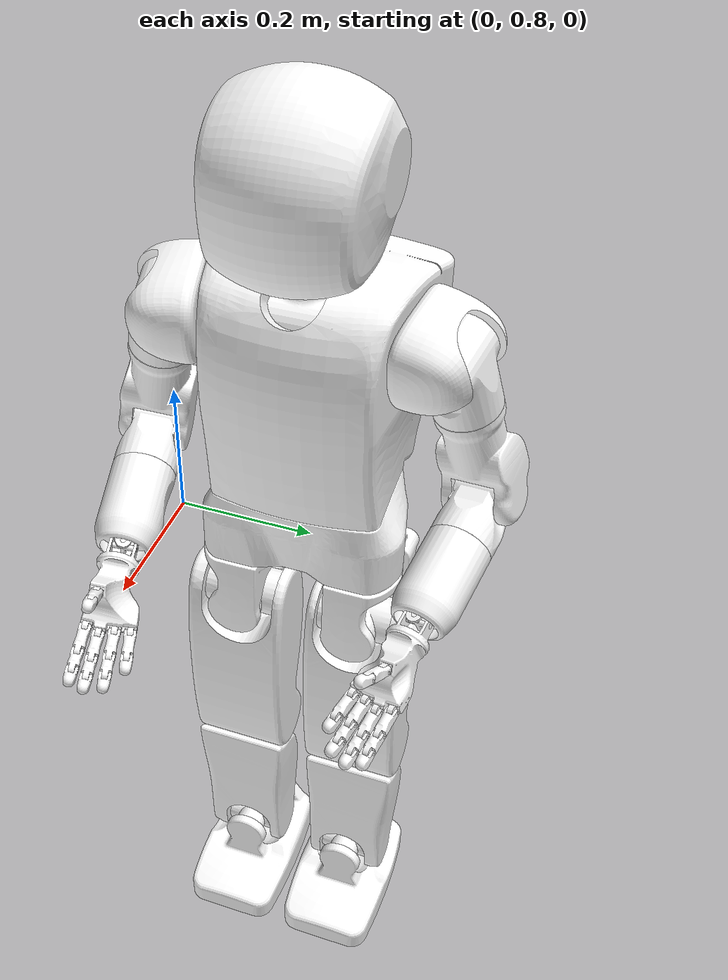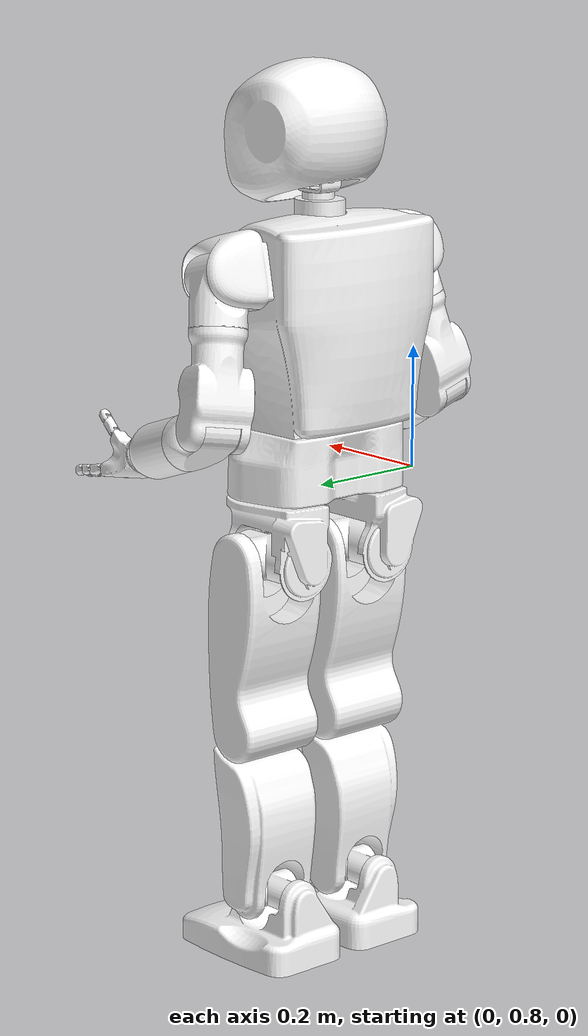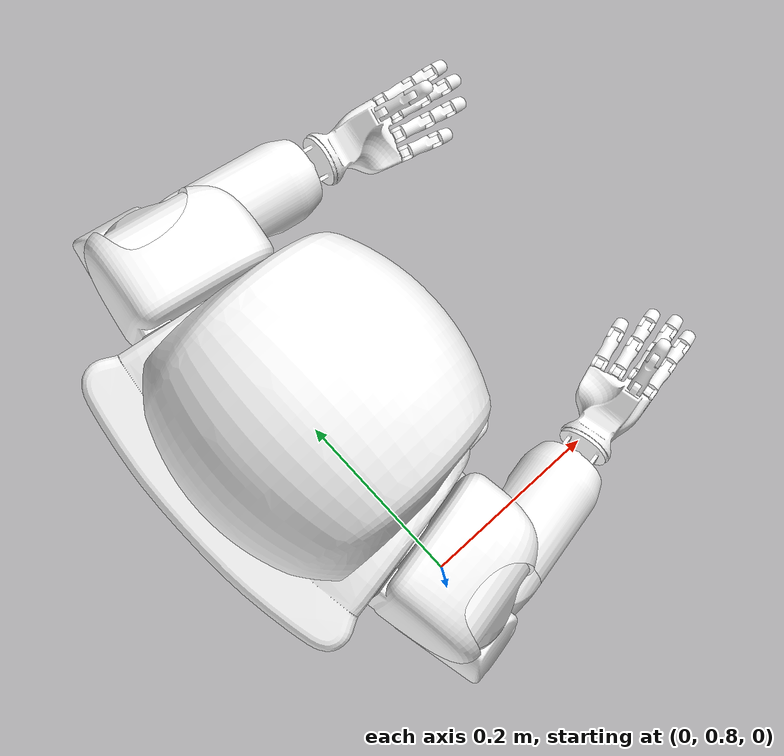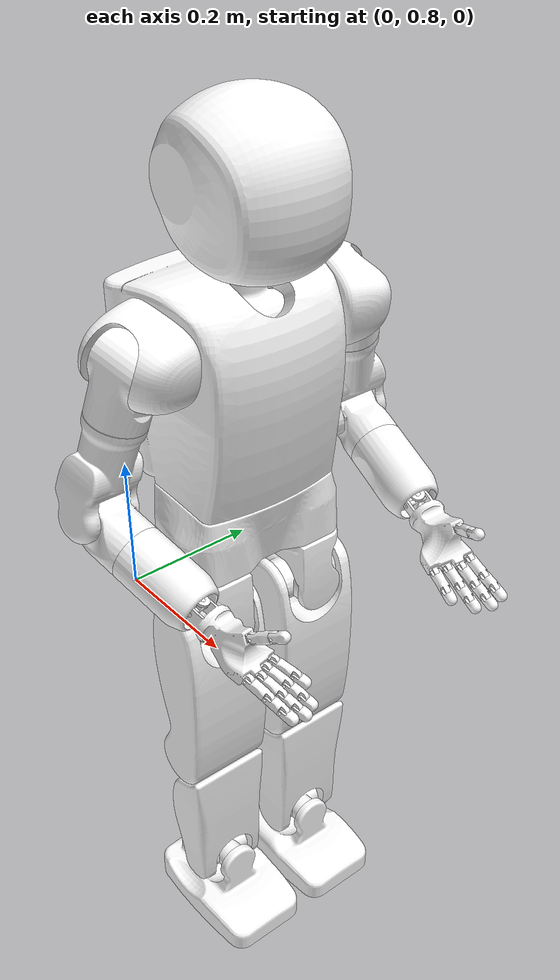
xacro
<?xml version="1.0"?>
<robot name="ar601" xmlns:xacro="http://www.ros.org/wiki/xacro">

    <xacro:include filename="$(find ar601_description)/urdf/common.xacro"/>
    <xacro:include filename="$(find ar601_description)/urdf/helper_macros.urdf.xacro"/>

    <xacro:include filename="$(find ar601_description)/urdf/ar601_primitive_collision_geoms.urdf.xacro"/>

    <xacro:include filename="$(find ar601_description)/urdf/ar601_original_inertia.urdf.xacro"/>
    <!-- NOT FIXED: -->
    <xacro:include filename="$(find ar601_description)/urdf/leg/ar601_leg_no_collision.urdf.xacro"/>
    <!-- FIXED: -->
    <xacro:include filename="$(find ar601_description)/urdf/arm/ar601_arm_fixed2_no_collision.urdf.xacro"/>
    <xacro:include filename="$(find ar601_description)/urdf/arm/ar601_wrist_fixed_no_collision.urdf.xacro"/>
    <xacro:include filename="$(find ar601_description)/urdf/torso/ar601_torso_fixed_no_collision.urdf.xacro"/>
    <xacro:include filename="$(find ar601_description)/urdf/head/ar601_head_fixed_no_collision.urdf.xacro"/>

    <ar601_torso_macro/>
    <ar601_arm_macro/>
    <ar601_wrist_macro/>
    <ar601_head_macro/>
    <ar601_leg_macro/>

    <!-- If fixing to the ground is needed -->

       <link name="world"/>

      <joint name="grounding" type="fixed">
        <parent link="world"/>
        <child link="Belly"/>
        <origin
          xyz="0 1 0.1"
          rpy="0 0 0" />
      </joint>

    <!-- If fixing to the ground is needed -->

    <xacro:include filename="$(find ar601_description)/urdf/sensors/sensors.urdf.xacro"/>

    <xacro:include filename="$(find ar601_description)/gazebo/gazebo.urdf.xacro"/>

</robot>

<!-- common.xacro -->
<robot xmlns:xacro="http://www.ros.org/wiki/xacro">

  <!-- Joint dynamics -->

  <xacro:property name="leg_joint_friction"   value="0.1" />
  <xacro:property name="leg_joint_damping"  value="10.0" /> <!-- seems proper 10-20 -->
  <xacro:property name="arm_joint_friction"   value="1" />
  <xacro:property name="arm_joint_damping"  value="15" />
  <xacro:property name="head_joint_friction"   value="100.0" />
  <xacro:property name="head_joint_damping"  value="0.0" />
  <xacro:property name="torso_joint_friction"   value="100.0" />
  <xacro:property name="torso_joint_damping"  value="0.0" />
  <xacro:property name="wrist_joint_friction"   value="100.0" />
  <xacro:property name="wrist_joint_damping"  value="0.0" />

 <!--  NOMINAL EFFORT VALUES -->

<!--   STALL EFFORT VALUES -->

  <!--   30% STALL EFFORT VALUES -->

  <xacro:property name="hip_yaw_max_effort"  value="60.0" />
  <xacro:property name="hip_max_effort"  value="250.0" />
  <xacro:property name="knee_max_effort"  value="220.0" />
  <xacro:property name="ankle_max_effort"  value="60.0" />

    <!--   TEST STALL EFFORT VALUES -->

  <xacro:property name="ground_kp"  value="1000000.0" />
  <xacro:property name="ground_kd"  value="10000.0" />
  <xacro:property name="ground_mu1"  value="1.5" />
  <xacro:property name="ground_mu2"  value="1.5" />

</robot>

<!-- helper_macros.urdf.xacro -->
<robot  name="ar601" xmlns:xacro="http://www.ros.org/wiki/xacro">

   <xacro:macro name="joint_transmission_macro" params="joint_name">
    <transmission name="${joint_name}_transmssion">
      <type>transmission_interface/SimpleTransmission</type>
      <joint name="${joint_name}">
        <hardwareInterface>hardware_interface/EffortJointInterface</hardwareInterface>
      </joint>
      <actuator name="${joint_name}_motor">
        <hardwareInterface>EffortJointInterface</hardwareInterface>
        <mechanicalReduction>1</mechanicalReduction>
      </actuator>
    </transmission>
    <gazebo reference="${joint_name}">
      <implicitSpringDamper>1</implicitSpringDamper>
    </gazebo>
  </xacro:macro>

  <xacro:macro name="inertial_constant_macro" >
    <inertial>
      <mass value="0.5" />
      <origin xyz="0 0 0" />
      <inertia ixx="0.1" ixy="0.0" ixz="0.0"
               iyy="0.1" iyz="0.0"
               izz="0.1" />
    </inertial>
  </xacro:macro>

  <xacro:macro name="inertial_cuboid_macro" params="mass x_length y_length z_length">
    <inertial>
      <mass value="${mass}" />
      <origin xyz="0 0 0" />
      <inertia ixx="${(1/12) * mass* (y_length*y_length+ z_length*z_length)}" ixy="0.0" ixz="0.0"
               iyy="${(1/12) * mass* (x_length*x_length+ z_length*z_length)}" iyz="0.0"
               izz="${(1/12) * mass* (x_length*x_length+ y_length*y_length)}" />
    </inertial>
  </xacro:macro>

  <xacro:macro name="inertial_cuboid__with_pose_macro" params="mass x_length y_length z_length *origin">
    <inertial>
      <xacro:insert_block name="origin"/>
      <mass value="${mass}" />
      <inertia ixx="${(1/12) * mass* (y_length*y_length+ z_length*z_length)}" ixy="0.0" ixz="0.0"
               iyy="${(1/12) * mass* (x_length*x_length+ z_length*z_length)}" iyz="0.0"
               izz="${(1/12) * mass* (x_length*x_length+ y_length*y_length)}" />
    </inertial>
  </xacro:macro>

  <xacro:macro name="inertial_sphere_macro" params="mass diameter">
    <inertial>
      <mass value="${mass}" />
      <origin xyz="0 0 0" />
      <inertia ixx="${(2/5) * mass* ( (diameter*0.5)) * (diameter*0.5))}" ixy="0.0" ixz="0.0"
               iyy="${(2/5) * mass* ( (diameter*0.5)) * (diameter*0.5))}" iyz="0.0"
               izz="${(2/5) * mass* ( (diameter*0.5)) * (diameter*0.5))}" />
    </inertial>
  </xacro:macro>

  <xacro:macro name="inertial_sphere_with_pose_macro" params="mass diameter *origin">
    <inertial>
      <xacro:insert_block name="origin"/>
      <mass value="${mass}" />
      <inertia ixx="${(2/5) * mass* ( (diameter*0.5)) * (diameter*0.5))}" ixy="0.0" ixz="0.0"
               iyy="${(2/5) * mass* ( (diameter*0.5)) * (diameter*0.5))}" iyz="0.0"
               izz="${(2/5) * mass* ( (diameter*0.5)) * (diameter*0.5))}" />
    </inertial>
  </xacro:macro>

  <xacro:macro name="visual_macro" params="name">
    <visual>
      <origin
        xyz="0 0 0"
        rpy="0 0 0" />
      <geometry>
        <mesh
          filename="package://ar601_description/meshes/${name}.STL" />
      </geometry>
      <material
        name="">
        <color
          rgba="1 1 1 1" />
      </material>
    </visual>
  </xacro:macro>

  <xacro:macro name="collision_mesh_macro" params="name">
      <collision>
      <origin
        xyz="0 0 0"
        rpy="0 0 0" />
      <geometry>
        <mesh
          filename="package://ar601_description/meshes/${name}.STL" />
      </geometry>
    </collision>
  </xacro:macro>

  <xacro:macro name="link_macro" params="name">
    <link
      name="${name}">
      <xacro:call macro="${name}_inertial_macro"/>
      <xacro:call macro="${name}_collision_geom_macro"/>
      <visual_macro name="${name}" />
    </link>
  </xacro:macro>

  <xacro:macro name="link_macro_2" params="name">
    <link
      name="${name}">
      <xacro:call macro="${name}_inertial_macro"/>
      <visual_macro name="${name}" />
    </link>
  </xacro:macro>

</robot>

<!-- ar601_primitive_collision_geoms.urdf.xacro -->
<robot name="ar601" xmlns:xacro="http://www.ros.org/wiki/xacro">

  <xacro:include filename="$(find ar601_description)/urdf/head/ar601_head_primitive_collision_geoms.urdf.xacro" />
  <xacro:include filename="$(find ar601_description)/urdf/leg/ar601_leg_primitive_collision_geoms.urdf.xacro" />
  <xacro:include filename="$(find ar601_description)/urdf/arm/ar601_arm_primitive_collision_geoms.urdf.xacro" />
  <xacro:include filename="$(find ar601_description)/urdf/arm/ar601_wrist_primitive_collision_geoms.urdf.xacro" />
  <xacro:include filename="$(find ar601_description)/urdf/torso/ar601_torso_primitive_collision_geoms.urdf.xacro" />

</robot>

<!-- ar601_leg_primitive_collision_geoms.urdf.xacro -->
<robot  name="robotis_op2" xmlns:xacro="http://www.ros.org/wiki/xacro">

<xacro:macro name="LPelvis_collision_geom_macro">
    <collision>
      <origin xyz="0.000000 -0.010580 0.028437" />
      <geometry>
        <box size="0.045 0.08175 0.028652" />
      </geometry>
    </collision>
</xacro:macro>

<xacro:macro name="LHip_collision_geom_macro">
    <collision>
      <origin xyz="0.000079 0.018242 0.013873" />
      <geometry>
        <box size="0.001 0.001 0.001"/>
      </geometry>
    </collision>
</xacro:macro>

<xacro:macro name="LThigh_collision_geom_macro">
    <collision>
      <origin xyz="-0.062965 -0.000323 0.000692" />
      <geometry>
        <box size="0.093 0.035 0.045"/>
      </geometry>
    </collision>
</xacro:macro>

<xacro:macro name="LTibia_collision_geom_macro">
    <collision>
      <origin xyz="-0.053955 0.006548 -0.000592" />
      <geometry>
        <box size="0.093 0.035 0.045"/>
      </geometry>
    </collision>
</xacro:macro>

<xacro:macro name="LAnkle_collision_geom_macro">
    <collision>
      <origin xyz="-0.000214 -0.018536 0.013873" />
      <geometry>
        <box size="0.028652 0.08175 0.045"/>
      </geometry>
    </collision>
</xacro:macro>

<xacro:macro name="LFoot_collision_geom_macro">
    <collision>
      <origin xyz="0.02 0 -0.05275" />
      <geometry>
        <box size="0.234 0.134 0.1055"/>
      </geometry>
    </collision>
</xacro:macro>

<xacro:macro name="RPelvis_collision_geom_macro">
    <collision>
      <origin xyz="0.000000 0.010580 0.028437" />
      <geometry>
        <box size="0.045 0.08175 0.028652" />
      </geometry>
    </collision>
</xacro:macro>

<xacro:macro name="RHip_collision_geom_macro">
    <collision>
      <origin xyz="0.000079 -0.018242 0.0138735" />
      <geometry>
        <box size="0.001 0.001 0.001"/>
      </geometry>
    </collision>
</xacro:macro>

<xacro:macro name="RThigh_collision_geom_macro">
    <collision>
      <origin xyz="0.062965 -0.000323 0.000692" />
      <geometry>
        <box size="0.093 0.035 0.045"/>
      </geometry>
    </collision>
</xacro:macro>

<xacro:macro name="RTibia_collision_geom_macro">
    <collision>
      <origin xyz="0.053955 0.006548 -0.000592" />
      <geometry>
        <box size="0.093 0.035 0.045"/>
      </geometry>
    </collision>
</xacro:macro>

<xacro:macro name="RAnkle_collision_geom_macro">
    <collision>
      <origin xyz="-0.000214 -0.018536 0.013873" />
      <geometry>
        <box size="0.028652 0.08175 0.045"/>
      </geometry>
    </collision>
</xacro:macro>

<xacro:macro name="RFoot_collision_geom_macro">
    <collision>
      <origin xyz="0.02 0 -0.05275" />
      <geometry>
        <box size="0.234 0.134 0.1055"/>
      </geometry>
    </collision>
</xacro:macro>

</robot>

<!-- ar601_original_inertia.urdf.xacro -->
<robot name="ar601" xmlns:xacro="http://www.ros.org/wiki/xacro">

  <xacro:include filename="$(find ar601_description)/urdf/head/ar601_head_original_inertia.urdf.xacro" />
  <xacro:include filename="$(find ar601_description)/urdf/leg/ar601_leg_original_inertia.urdf.xacro" />
  <xacro:include filename="$(find ar601_description)/urdf/arm/ar601_arm_original_inertia.urdf.xacro" />
  <xacro:include filename="$(find ar601_description)/urdf/arm/ar601_wrist_original_inertia.urdf.xacro" />
  <xacro:include filename="$(find ar601_description)/urdf/torso/ar601_torso_original_inertia.urdf.xacro" />

</robot>

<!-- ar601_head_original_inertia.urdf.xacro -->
<robot  name="robotis_op2" xmlns:xacro="http://www.ros.org/wiki/xacro">

<xacro:macro name="Neck1_inertial_macro">
    <inertial>
      <origin
        xyz="-0.0222927487404251 4.47895651753766E-05 0.0310409976295018"
        rpy="0 0 0" />
      <mass
        value="0.657320428434859" />
      <inertia
        ixx="0.00102025512184757"
        ixy="0.0"
        ixz="0.0"
        iyy="0.00120134781263084"
        iyz="0.0"
        izz="0.000718372081172033" />
    </inertial>
</xacro:macro>

<xacro:macro name="Neck2_inertial_macro">
    <inertial>
      <origin
        xyz="-9.38630904016337E-06 4.42165265520866E-05 -0.0162910790688592"
        rpy="0 0 0" />
      <mass
        value="0.0167205530633327" />
      <inertia
        ixx="6.21421984464677E-06"
        ixy="0.0"
        ixz="0.0"
        iyy="1.28553666419653E-05"
        iyz="0.0"
        izz="1.23400064727747E-05" />
    </inertial>
</xacro:macro>

<xacro:macro name="Head1_inertial_macro">
    <inertial>
      <origin
        xyz="-9.38941181994821E-06 4.42605420928731E-05 -2.87270207621759E-13"
        rpy="0 0 0" />
      <mass
        value="0.140258674510404" />
      <inertia
        ixx="0.000255527506833601"
        ixy="0.0"
        ixz="0.0"
        iyy="2.64614495249746E-05"
        iyz="0.0"
        izz="0.000265796055755356" />
    </inertial>
</xacro:macro>

<xacro:macro name="Head2_inertial_macro">
    <inertial>
      <origin
        xyz="0.0367567218407244 6.13069479271212E-05 0.0741939345619121"
        rpy="0 0 0" />
      <mass
        value="5.51543814682702" />
      <inertia
        ixx="0.0328094469174202"
        ixy="0.0"
        ixz="0.0"
        iyy="0.0336400080305931"
        iyz="0.0"
        izz="0.0379699861871773" />
    </inertial>
</xacro:macro>

</robot>

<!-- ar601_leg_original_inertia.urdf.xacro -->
<robot  name="robotis_op2" xmlns:xacro="http://www.ros.org/wiki/xacro">

<xacro:macro name="LPelvis_inertial_macro">
    <inertial>
      <origin
        xyz="-0.034 0.0 0.054"
        rpy="0 0 0" />
      <mass
        value="0.908" />
      <inertia
        ixx="0.00151"
        ixy="0.0"
        ixz="0.0"
        iyy="0.00414"
        iyz="0.0"
        izz="0.0037" />
    </inertial>
</xacro:macro>

<xacro:macro name="RPelvis_inertial_macro">
    <inertial>
      <origin
        xyz="-0.034 0.0 0.054"
        rpy="0 0 0" />
      <mass
        value="0.908" />
      <inertia
        ixx="0.00151"
        ixy="0.0"
        ixz="0.0"
        iyy="0.00414"
        iyz="0.0"
        izz="0.0037" />
    </inertial>
</xacro:macro>

<xacro:macro name="LHip_inertial_macro">
    <inertial>
      <origin
        xyz="-0.014 0.0 0.0"
        rpy="0 0 0" />
      <mass
        value="0.755" />
      <inertia
        ixx="0.000786"
        ixy="0.0"
        ixz="0.0"
        iyy="0.00127"
        iyz="0.0"
        izz="0.00156" />
    </inertial>
</xacro:macro>

<xacro:macro name="RHip_inertial_macro">
    <inertial>
      <origin
        xyz="-0.014 0.0 0.0"
        rpy="0 0 0" />
      <mass
        value="0.755" />
      <inertia
        ixx="0.000786"
        ixy="0.0"
        ixz="0.0"
        iyy="0.00127"
        iyz="0.0"
        izz="0.00156" />
    </inertial>
</xacro:macro>

<xacro:macro name="LThigh_inertial_macro">
    <inertial>
      <origin
        xyz="0.008 0.007 -0.17"
        rpy="0 0 0" />
      <mass
        value="4.04" />
      <inertia
        ixx="0.0407"
        ixy="0.0"
        ixz="0.0"
        iyy="0.0352"
        iyz="0.0"
        izz="0.0117" />
    </inertial>
</xacro:macro>

<xacro:macro name="RThigh_inertial_macro">
    <inertial>
      <origin
        xyz="0.008 -0.007 -0.17"
        rpy="0 0 0" />
      <mass
        value="4.04" />
      <inertia
        ixx="0.0407"
        ixy="0.0"
        ixz="0.0"
        iyy="0.0352"
        iyz="0.0"
        izz="0.0117" />
    </inertial>
</xacro:macro>

<xacro:macro name="LTibia_inertial_macro">
    <inertial>
      <origin
        xyz="0.002 0.004 -0.153"
        rpy="0 0 0" />
      <mass
        value="2.441" />
      <inertia
        ixx="0.0138"
        ixy="0.0"
        ixz="0.0"
        iyy="0.0113"
        iyz="0.0"
        izz="0.00566" />
    </inertial>
</xacro:macro>

<xacro:macro name="RTibia_inertial_macro">
    <inertial>
      <origin
        xyz="0.002 -0.004 -0.153"
        rpy="0 0 0" />
      <mass
        value="2.441" />
      <inertia
        ixx="0.0138"
        ixy="0.0"
        ixz="0.0"
        iyy="0.0113"
        iyz="0.0"
        izz="0.00566" />
    </inertial>
</xacro:macro>

<xacro:macro name="LAnkle_inertial_macro">
    <inertial>
      <origin
        xyz="-0.007 -0.001 0.0"
        rpy="0 0 0" />
      <mass
        value="0.297" />
      <inertia
        ixx="0.000161"
        ixy="0.0"
        ixz="0.0"
        iyy="0.000283"
        iyz="0.0"
        izz="0.000346" />
    </inertial>
</xacro:macro>

<xacro:macro name="RAnkle_inertial_macro">
    <inertial>
      <origin
        xyz="-0.007 0.001 0.0"
        rpy="0 0 0" />
      <mass
        value="0.297" />
      <inertia
        ixx="0.000161"
        ixy="0.0"
        ixz="0.0"
        iyy="0.000283"
        iyz="0.0"
        izz="0.000346" />
    </inertial>
</xacro:macro>

<xacro:macro name="LFoot_inertial_macro">
    <inertial>
      <origin
        xyz="0.008 -0.004 -0.072"
        rpy="0 0 0" />
      <mass
        value="2.208" />
      <inertia
        ixx="0.00541"
        ixy="0.0"
        ixz="0.0"
        iyy="0.0129"
        iyz="0.0"
        izz="0.0152" />
    </inertial>
</xacro:macro>

<xacro:macro name="RFoot_inertial_macro">
    <inertial>
      <origin
        xyz="0.008 0.004 -0.072"
        rpy="0 0 0" />
      <mass
        value="2.208" />
      <inertia
        ixx="0.00541"
        ixy="0.0"
        ixz="0.0"
        iyy="0.0129"
        iyz="0.0"
        izz="0.0152" />
    </inertial>
</xacro:macro>

</robot>

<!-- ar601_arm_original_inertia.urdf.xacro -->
<robot  name="ar601" xmlns:xacro="http://www.ros.org/wiki/xacro">

<xacro:macro name="LShoulder1_inertial_macro">
    <inertial>
      <origin
        xyz="0.0119 0.0447 0.0125"
        rpy="0 0 0" />
      <mass
        value="0.702" />
      <inertia
        ixx="0.00107"
        ixy="0.0"
        ixz="0.0"
        iyy="0.00208"
        iyz="0.0"
        izz="0.00181" />
    </inertial>
</xacro:macro>

<xacro:macro name="RShoulder1_inertial_macro">
    <inertial>
      <origin
        xyz="0.0119 -0.0447 0.0125"
        rpy="0 0 0" />
      <mass
        value="0.702" />
      <inertia
        ixx="0.00107"
        ixy="0.0"
        ixz="0.0"
        iyy="0.00208"
        iyz="0.0"
        izz="0.00181" />
    </inertial>
</xacro:macro>

<xacro:macro name="LShoulder2_inertial_macro">
    <inertial>
      <origin
        xyz="0.0512 0.0264 0.00120"
        rpy="0 0 0" />
      <mass
        value="0.710" />
      <inertia
        ixx="0.00114"
        ixy="0.0"
        ixz="0.0"
        iyy="0.000678"
        iyz="0.0"
        izz="0.00118" />
    </inertial>
</xacro:macro>

<xacro:macro name="RShoulder2_inertial_macro">
    <inertial>
      <origin
        xyz="0.0512 -0.0264 0.00120"
        rpy="0 0 0" />
      <mass
        value="0.710" />
      <inertia
        ixx="0.00114"
        ixy="0.0"
        ixz="0.0"
        iyy="0.000678"
        iyz="0.0"
        izz="0.00118" />
    </inertial>
</xacro:macro>

<xacro:macro name="LShoulder3_inertial_macro">
    <inertial>
      <origin
        xyz="0 0.0754 0"
        rpy="0 0 0" />
      <mass
        value="0.924" />
      <inertia
        ixx="0.00281"
        ixy="0.0"
        ixz="0.0"
        iyy="0.00111"
        iyz="0.0"
        izz="0.00248" />
    </inertial>
</xacro:macro>

<xacro:macro name="RShoulder3_inertial_macro">
    <inertial>
      <origin
        xyz="0 -0.0754 0"
        rpy="0 0 0" />
      <mass
        value="0.923986049465604" />
      <inertia
        ixx="0.00281"
        ixy="0.0"
        ixz="0.0"
        iyy="0.00111"
        iyz="0.0"
        izz="0.00248" />
    </inertial>
</xacro:macro>

<xacro:macro name="LElbow_inertial_macro">
    <inertial>
      <origin
        xyz="-0.006 0.0268 -0.0306"
        rpy="0 0 0" />
      <mass
        value="0.067" />
      <inertia
        ixx="0.000109"
        ixy="0.0"
        ixz="0.0"
        iyy="8.7E-05"
        iyz="0.0"
        izz="0.000124" />
    </inertial>
</xacro:macro>

<xacro:macro name="RElbow_inertial_macro">
    <inertial>
      <origin
        xyz="-0.006 -0.0268 -0.0306"
        rpy="0 0 0" />
      <mass
        value="0.067" />
      <inertia
        ixx="0.000109"
        ixy="0.0"
        ixz="0.0"
        iyy="8.7E-05"
        iyz="0.0"
        izz="0.000124" />
    </inertial>
</xacro:macro>

<xacro:macro name="LArm_inertial_macro">
    <inertial>
      <origin
        xyz="0 0.0546 0.0003"
        rpy="0 0 0" />
      <mass
        value="0.698" />
      <inertia
        ixx="0.00106"
        ixy="0.0"
        ixz="0.0"
        iyy="0.000705"
        iyz="0.0"
        izz="0.00107" />
    </inertial>
</xacro:macro>

<xacro:macro name="RArm_inertial_macro">
    <inertial>
      <origin
        xyz="0 -0.0546 0.0003"
        rpy="0 0 0" />
      <mass
        value="0.698" />
      <inertia
        ixx="0.00106"
        ixy="0.0"
        ixz="0.0"
        iyy="0.000705"
        iyz="0.0"
        izz="0.00107" />
    </inertial>
</xacro:macro>

</robot>

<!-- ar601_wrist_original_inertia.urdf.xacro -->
<robot  name="ar601" xmlns:xacro="http://www.ros.org/wiki/xacro">

<xacro:macro name="LWrist1_inertial_macro">
    <inertial>
      <origin
        xyz="8.69257801849876E-09 0 -8.69257799074319E-09"
        rpy="0 0 0" />
      <mass
        value="0.00354841244692992" />
      <inertia
        ixx="0"
        ixy="0.0"
        ixz="0.0"
        iyy="0"
        iyz="0.0"
        izz="0" />
    </inertial>
</xacro:macro>

<xacro:macro name="RWrist1_inertial_macro">
    <inertial>
      <origin
        xyz="-8.69257804625434E-09 -1.11022302462516E-16 -8.69257799074319E-09"
        rpy="0 0 0" />
      <mass
        value="0.00354841244692995" />
      <inertia
        ixx="0"
        ixy="0.0"
        ixz="0.0"
        iyy="0"
        iyz="0.0"
        izz="0" />
    </inertial>
</xacro:macro>

<xacro:macro name="LWrist2_inertial_macro">
    <inertial>
      <origin
        xyz="-0.00320146376134629 0.0679998358897447 -0.00139578498789278"
        rpy="0 0 0" />
      <mass
        value="0.106503207491186" />
      <inertia
        ixx="0.000160140258431206"
        ixy="0.0"
        ixz="0.0"
        iyy="7.18787865803972E-05"
        iyz="0.0"
        izz="0.000161242457643774" />
    </inertial>
</xacro:macro>

<xacro:macro name="RWrist2_inertial_macro">
    <inertial>
      <origin
        xyz="-0.0032015407111433 -0.0680002451287101 -0.00139605167258255"
        rpy="0 0 0" />
      <mass
        value="0.106500992906003" />
      <inertia
        ixx="0.000160137434624347"
        ixy="0.0"
        ixz="0.0"
        iyy="7.18756092477474E-05"
        iyz="0.0"
        izz="0.000161241258582528" />
    </inertial>
</xacro:macro>

<xacro:macro name="LFinger1_1_inertial_macro">
    <inertial>
      <origin
        xyz="0.017392149570403 0.0125768799508672 -0.00399999938736578"
        rpy="0 0 0" />
      <mass
        value="0.00794971429092078" />
      <inertia
        ixx="6.15322908627996E-07"
        ixy="0.0"
        ixz="0.0"
        iyy="8.19342049389076E-07"
        iyz="0.0"
        izz="1.16701160817821E-06" />
    </inertial>
</xacro:macro>

<xacro:macro name="RFinger1_1_inertial_macro">
    <inertial>
      <origin
        xyz="0.018058 -0.011601 -0.004"
        rpy="0 0 0" />
      <mass
        value="0.0079497" />
      <inertia
        ixx="5.7022E-07"
        ixy="0.0"
        ixz="0.0"
        iyy="8.6444E-07"
        iyz="0.0"
        izz="1.167E-06" />
    </inertial>
</xacro:macro>

<xacro:macro name="LFinger1_2_inertial_macro">
    <inertial>
      <origin
        xyz="0.0105994545023848 0.00682969355090124 -0.00399999152754377"
        rpy="0 0 0" />
      <mass
        value="0.0041977190113557" />
      <inertia
        ixx="2.06802404520768E-07"
        ixy="0.0"
        ixz="0.0"
        iyy="2.21544071243177E-07"
        iyz="0.0"
        izz="2.61121380624231E-07" />
    </inertial>
</xacro:macro>

<xacro:macro name="RFinger1_2_inertial_macro">
    <inertial>
      <origin
        xyz="0.0104605997712183 -0.00704052558917401 -0.00400000848701126"
        rpy="0 0 0" />
      <mass
        value="0.00419771897410452" />
      <inertia
        ixx="2.09142237590012E-07"
        ixy="0.0"
        ixz="0.0"
        iyy="2.19204240697583E-07"
        iyz="0.0"
        izz="2.61121384273268E-07" />
    </inertial>
</xacro:macro>

<xacro:macro name="LFinger2_1_inertial_macro">
    <inertial>
      <origin
        xyz="0.00549196215025359 0.0208173591048728 -0.00362500054881426"
        rpy="0 0 0" />
      <mass
        value="0.00794969630364376" />
      <inertia
        ixx="1.07237570353924E-06"
        ixy="0.0"
        ixz="0.0"
        iyy="3.62556603064786E-07"
        iyz="0.0"
        izz="1.16674304524627E-06" />
    </inertial>
</xacro:macro>

<xacro:macro name="RFinger2_1_inertial_macro">
    <inertial>
      <origin
        xyz="0.00466411344108193 -0.0210181956784309 -0.00362576268809778"
        rpy="0 0 0" />
      <mass
        value="0.00794969377283116" />
      <inertia
        ixx="1.09026286614019E-06"
        ixy="0.0"
        ixz="0.0"
        iyy="3.44669160887216E-07"
        iyz="0.0"
        izz="1.16674314947762E-06" />
    </inertial>
</xacro:macro>

<xacro:macro name="LFinger2_2_inertial_macro">
    <inertial>
      <origin
        xyz="0.00506087231326857 0.0156875104338542 -0.00371293073598111"
        rpy="0 0 0" />
      <mass
        value="0.00554910902171019" />
      <inertia
        ixx="4.87095066933935E-07"
        ixy="0.0"
        ixz="0.0"
        iyy="2.47574406917102E-07"
        iyz="0.0"
        izz="5.45118280139522E-07" />
    </inertial>
</xacro:macro>

<xacro:macro name="RFinger2_2_inertial_macro">
    <inertial>
      <origin
        xyz="0.00340591071964673 -0.0161277265396876 -0.00371387542361651"
        rpy="0 0 0" />
      <mass
        value="0.00554910460160714" />
      <inertia
        ixx="5.08721761194374E-07"
        ixy="0.0"
        ixz="0.0"
        iyy="2.25948765171186E-07"
        iyz="0.0"
        izz="5.4511708567559E-07" />
    </inertial>
</xacro:macro>

<xacro:macro name="LFinger2_3_inertial_macro">
    <inertial>
      <origin
        xyz="0.00268001122286671 0.0123904174102188 -0.00377999084881703"
        rpy="0 0 0" />
      <mass
        value="0.00419771959929121" />
      <inertia
        ixx="2.58144318341166E-07"
        ixy="0.0"
        ixz="0.0"
        iyy="1.7023412529365E-07"
        iyz="0.0"
        izz="2.61089320284028E-07" />
    </inertial>
</xacro:macro>

<xacro:macro name="RFinger2_3_inertial_macro">
    <inertial>
      <origin
        xyz="0.00245171343968303 -0.0124374976484516 -0.00378032558892799"
        rpy="0 0 0" />
      <mass
        value="0.00419771964934734" />
      <inertia
        ixx="2.59555350116999E-07"
        ixy="0.0"
        ixz="0.0"
        iyy="1.6882316593225E-07"
        iyz="0.0"
        izz="2.61089184393434E-07" />
    </inertial>
</xacro:macro>

<xacro:macro name="LFinger3_1_inertial_macro">
    <inertial>
      <origin
        xyz="0.00486393266793878 0.0209047085521565 -0.00400000345690754"
        rpy="0 0 0" />
      <mass
        value="0.00794969171707417" />
      <inertia
        ixx="1.0857545480312E-06"
        ixy="0.0"
        ixz="0.0"
        iyy="3.48910305135014E-07"
        iyz="0.0"
        izz="1.16701018610524E-06" />
    </inertial>
</xacro:macro>

<xacro:macro name="RFinger3_1_inertial_macro">
    <inertial>
      <origin
        xyz="0.00455337847888747 -0.0209745421456283 -0.00399999638824711"
        rpy="0 0 0" />
      <mass
        value="0.00794969055324976" />
      <inertia
        ixx="1.09207369431954E-06"
        ixy="0.0"
        ixz="0.0"
        iyy="3.42591157593321E-07"
        iyz="0.0"
        izz="1.16701011250278E-06" />
    </inertial>
</xacro:macro>

<xacro:macro name="LFinger3_2_inertial_macro">
    <inertial>
      <origin
        xyz="0.00465559688611381 0.0157423591331163 -0.00399997065634744"
        rpy="0 0 0" />
      <mass
        value="0.00554910682396278" />
      <inertia
        ixx="4.92692912454704E-07"
        ixy="0.0"
        ixz="0.0"
        iyy="2.41872402469041E-07"
        iyz="0.0"
        izz="5.45222393521601E-07" />
    </inertial>
</xacro:macro>

<xacro:macro name="RFinger3_2_inertial_macro">
    <inertial>
      <origin
        xyz="0.00337177939747289 -0.0160663472035111 -0.00400002877010486"
        rpy="0 0 0" />
      <mass
        value="0.00554910281221021" />
      <inertia
        ixx="5.08879384138404E-07"
        ixy="0.0"
        ixz="0.0"
        iyy="2.25685955064701E-07"
        iyz="0.0"
        izz="5.45222208070927E-07" />
    </inertial>
</xacro:macro>

<xacro:macro name="LFinger3_3_inertial_macro">
    <inertial>
      <origin
        xyz="0.00345549223233155 0.0121265307317509 -0.00400000816255019"
        rpy="0 0 0" />
      <mass
        value="0.00419771963133254" />
      <inertia
        ixx="2.52716242601003E-07"
        ixy="0.0"
        ixz="0.0"
        iyy="1.75630187004288E-07"
        iyz="0.0"
        izz="2.61121310803093E-07" />
    </inertial>
</xacro:macro>

<xacro:macro name="RFinger3_3_inertial_macro">
    <inertial>
      <origin
        xyz="0.00339900717141772 -0.0121424842902205 -0.00399999184428201"
        rpy="0 0 0" />
      <mass
        value="0.00419771964140524" />
      <inertia
        ixx="2.53127549336215E-07"
        ixy="0.0"
        ixz="0.0"
        iyy="1.75218879435412E-07"
        iyz="0.0"
        izz="2.61121309452847E-07" />
    </inertial>
</xacro:macro>

<xacro:macro name="LFinger4_1_inertial_macro">
    <inertial>
      <origin
        xyz="0.00539379528552368 0.0205276813540367 -0.00511722517128993"
        rpy="0 0 0" />
      <mass
        value="0.0079496968084077" />
      <inertia
        ixx="1.07280674359839E-06"
        ixy="0.0"
        ixz="0.0"
        iyy="3.64263032045508E-07"
        iyz="0.0"
        izz="1.16460560772909E-06" />
    </inertial>
</xacro:macro>

<xacro:macro name="RFinger4_1_inertial_macro">
    <inertial>
      <origin
        xyz="0.00516177212610174 -0.0205873675662279 -0.00511674333688239"
        rpy="0 0 0" />
      <mass
        value="0.00794969556236767" />
      <inertia
        ixx="1.0780535958852E-06"
        ixy="0.0"
        ixz="0.0"
        iyy="3.59016267886317E-07"
        iyz="0.0"
        izz="1.16460546770067E-06" />
    </inertial>
</xacro:macro>

<xacro:macro name="LFinger4_2_inertial_macro">
    <inertial>
      <origin
        xyz="0.00428947689637232 0.0156057848703034 -0.00485346295788791"
        rpy="0 0 0" />
      <mass
        value="0.00554910711454078" />
      <inertia
        ixx="4.96905090660544E-07"
        ixy="0.0"
        ixz="0.0"
        iyy="2.38603567768899E-07"
        iyz="0.0"
        izz="5.44279020861715E-07" />
    </inertial>
</xacro:macro>

<xacro:macro name="RFinger4_2_inertial_macro">
    <inertial>
      <origin
        xyz="0.00318340316971605 -0.0158694092251892 -0.00485019942956061"
        rpy="0 0 0" />
      <mass
        value="0.00554910342034866" />
      <inertia
        ixx="5.10293211654034E-07"
        ixy="0.0"
        ixz="0.0"
        iyy="2.25217697925249E-07"
        iyz="0.0"
        izz="5.44276592419134E-07" />
    </inertial>
</xacro:macro>

<xacro:macro name="LFinger4_3_inertial_macro">
    <inertial>
      <origin
        xyz="0.00365609696954247 0.0118305938140987 -0.00465439914376264"
        rpy="0 0 0" />
      <mass
        value="0.00419771176684675" />
      <inertia
        ixx="2.50768591324216E-07"
        ixy="0.0"
        ixz="0.0"
        iyy="1.77858501333368E-07"
        iyz="0.0"
        izz="2.60839634582203E-07" />
    </inertial>
</xacro:macro>

<xacro:macro name="RFinger4_3_inertial_macro">
    <inertial>
      <origin
        xyz="0.0012480368049875 -0.0123238366819444 -0.00464311804847459"
        rpy="0 0 0" />
      <mass
        value="0.00419771960423063" />
      <inertia
        ixx="2.6551390285043E-07"
        ixy="0.0"
        ixz="0.0"
        iyy="1.63121667317206E-07"
        iyz="0.0"
        izz="2.60832210977182E-07" />
    </inertial>
</xacro:macro>

<xacro:macro name="LFinger5_1_inertial_macro">
    <inertial>
      <origin
        xyz="0.00537981182902078 0.0202243856059368 -0.00622065626364918"
        rpy="0 0 0" />
      <mass
        value="0.00794969723008604" />
      <inertia
        ixx="1.07177260958229E-06"
        ixy="0.0"
        ixz="0.0"
        iyy="3.72484968827753E-07"
        iyz="0.0"
        izz="1.15741784875636E-06" />
    </inertial>
</xacro:macro>

<xacro:macro name="RFinger5_1_inertial_macro">
    <inertial>
      <origin
        xyz="0.00544061828037408 -0.020208057141314 -0.00622083122001763"
        rpy="0 0 0" />
      <mass
        value="0.00794969692061838" />
      <inertia
        ixx="1.0703561672966E-06"
        ixy="0.0"
        ixz="0.0"
        iyy="3.73900821619348E-07"
        iyz="0.0"
        izz="1.15741847589617E-06" />
    </inertial>
</xacro:macro>

<xacro:macro name="LFinger5_2_inertial_macro">
    <inertial>
      <origin
        xyz="0.00230556354296731 0.0119034186562637 -0.00529021852627207"
        rpy="0 0 0" />
      <mass
        value="0.00419771225237906" />
      <inertia
        ixx="2.59590700033085E-07"
        ixy="0.0"
        ixz="0.0"
        iyy="1.69906112085547E-07"
        iyz="0.0"
        izz="2.59969821852933E-07" />
    </inertial>
</xacro:macro>

<xacro:macro name="RFinger5_2_inertial_macro">
    <inertial>
      <origin
        xyz="0.00210372072020062 -0.0119417066357316 -0.00528801175808119"
        rpy="0 0 0" />
      <mass
        value="0.00419771917446531" />
      <inertia
        ixx="2.60781054116718E-07"
        ixy="0.0"
        ixz="0.0"
        iyy="1.68718444138267E-07"
        iyz="0.0"
        izz="2.59968376244567E-07" />
    </inertial>
</xacro:macro>

</robot>

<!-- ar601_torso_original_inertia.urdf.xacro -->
<robot  name="robotis_op2" xmlns:xacro="http://www.ros.org/wiki/xacro">

<xacro:macro name="Belly_inertial_macro">
    <inertial>
      <origin
        xyz="0.0087165 3.8567E-07 -0.051657"
        rpy="0 0 0" />
      <mass
        value="4.1266" />
      <inertia
        ixx="0.028323"
        ixy="0.0"
        ixz="0.0"
        iyy="0.011957"
        iyz="0.0"
        izz="0.033839" />
    </inertial>
</xacro:macro>

<xacro:macro name="Torso_inertial_macro">
    <inertial>
      <origin
        xyz="-0.011272 2.1289E-05 0.16761"
        rpy="0 0 0" />
      <mass
        value="17.759" /> <!-- 9 kg should be added to make 65 kg total, or leave it 56 kg if robot with no batteries-->
      <inertia
        ixx="0.23995"
        ixy="0.0"
        ixz="0.0"
        iyy="0.21472"
        iyz="0.0"
        izz="0.17329" />
    </inertial>
</xacro:macro>

</robot>

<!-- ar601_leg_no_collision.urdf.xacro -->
<robot  name="ar601" xmlns:xacro="http://www.ros.org/wiki/xacro">

  <xacro:macro name="ar601_leg_macro">

  <link_macro_2 name="LPelvis"/>
  <link_macro_2 name="RPelvis"/>
  <link_macro_2 name="LHip"/>
  <link_macro_2 name="RHip"/>
  <link_macro_2 name="LThigh"/>
  <link_macro_2 name="RThigh"/>
  <link_macro_2 name="LTibia"/>
  <link_macro_2 name="RTibia"/>
  <link_macro_2 name="LAnkle"/>
  <link_macro_2 name="RAnkle"/>
  <link_macro name="LFoot"/>
  <link_macro name="RFoot"/>

  <joint
    name="LHipYaw"
    type="revolute">
    <origin
      xyz="0.0276 0.088 -0.207"
      rpy="0 0 0" />
    <parent
      link="Belly" />
    <child
      link="LPelvis" />
    <axis
      xyz="0 0 1" />
    <limit
      lower="-0.175"
      upper="0.175"
      effort="${hip_yaw_max_effort}"
      velocity="2.5" />
    <dynamics
      damping="${leg_joint_damping}"
      friction="${leg_joint_friction}" />
  </joint>

  <joint
    name="LHipRoll"
    type="revolute">
    <origin
      xyz="0 0 0"
      rpy="0 0 0" />
    <parent
      link="LPelvis" />
    <child
      link="LHip" />
    <axis
      xyz="1 0 0" />
    <limit
      lower="-0.192"
      upper="0.314"
      effort="${hip_max_effort}"
      velocity="2.5" />
    <dynamics
      damping="${leg_joint_damping}"
      friction="${leg_joint_friction}" />
  </joint>

  <joint
    name="LHipPitch"
    type="revolute">
    <origin
      xyz="0 0 0"
      rpy="0 0 0" />
    <parent
      link="LHip" />
    <child
      link="LThigh" />
    <axis
      xyz="0 1 0" />
    <limit
      lower="-1.047"
      upper="0.698"
      effort="${hip_max_effort}"
      velocity="2.5" />
    <dynamics
      damping="${leg_joint_damping}"
      friction="${leg_joint_friction}" />
  </joint>

  <joint
    name="LKneePitch"
    type="revolute">
    <origin
      xyz="0 0 -0.28"
      rpy="0 0 0" />
    <parent
      link="LThigh" />
    <child
      link="LTibia" />
    <axis
      xyz="0 1 0" />
    <limit
      lower="-0.087"
      upper="1.571"
      effort="${knee_max_effort}"
      velocity="5.8" />
    <dynamics
      damping="${leg_joint_damping}"
      friction="${leg_joint_friction}" />
  </joint>

  <joint
    name="LAnklePitch"
    type="revolute">
    <origin
      xyz="0 0 -0.28"
      rpy="0 0 0" />
    <parent
      link="LTibia" />
    <child
      link="LAnkle" />
    <axis
      xyz="0 1 0" />
    <limit
      lower="-1.047"
      upper="0.559"
      effort="${ankle_max_effort}"
      velocity="3.4" />
    <dynamics
      damping="${leg_joint_damping}"
      friction="${leg_joint_friction}" />
  </joint>

  <joint
    name="LAnkleRoll"
    type="revolute">
    <origin
      xyz="0 0 0"
      rpy="0 0 0" />
    <parent
      link="LAnkle" />
    <child
      link="LFoot" />
    <axis
      xyz="1 0 0" />
    <limit
      lower="-0.297"
      upper="0.297"
      effort="${ankle_max_effort}"
      velocity="3.4" />
    <dynamics
      damping="${leg_joint_damping}"
      friction="${leg_joint_friction}" />
  </joint>

  <!-- RIGHT -->

  <joint
    name="RHipYaw"
    type="revolute">
    <origin
      xyz="0.0276 -0.088 -0.207"
      rpy="0 0 0" />
    <parent
      link="Belly" />
    <child
      link="RPelvis" />
    <axis
      xyz="0 0 1" />
    <limit
      lower="-0.175"
      upper="0.175"
      effort="${hip_yaw_max_effort}"
      velocity="2.5" />
    <dynamics
      damping="${leg_joint_damping}"
      friction="${leg_joint_friction}" />
  </joint>

  <joint
    name="RHipRoll"
    type="revolute">
    <origin
      xyz="0 0 0"
      rpy="0 0 0" />
    <parent
      link="RPelvis" />
    <child
      link="RHip" />
    <axis
      xyz="1 0 0" />
    <limit
      lower="-0.314"
      upper="0.192"
      effort="${hip_max_effort}"
      velocity="2.5" />
    <dynamics
      damping="${leg_joint_damping}"
      friction="${leg_joint_friction}" />
  </joint>

  <joint
    name="RHipPitch"
    type="revolute">
    <origin
      xyz="0 0 0"
      rpy="0 0 0" />
    <parent
      link="RHip" />
    <child
      link="RThigh" />
    <axis
      xyz="0 1 0" />
    <limit
      lower="-1.047"
      upper="0.698"
      effort="${hip_max_effort}"
      velocity="2.5" />
    <dynamics
      damping="${leg_joint_damping}"
      friction="${leg_joint_friction}" />
  </joint>

  <joint
    name="RKneePitch"
    type="revolute">
    <origin
      xyz="0 0 -0.28"
      rpy="0 0 0" />
    <parent
      link="RThigh" />
    <child
      link="RTibia" />
    <axis
      xyz="0 1 0" />
    <limit
      lower="-0.087"
      upper="1.571"
      effort="${knee_max_effort}"
      velocity="5.8" />
    <dynamics
      damping="${leg_joint_damping}"
      friction="${leg_joint_friction}" />
  </joint>

  <joint
    name="RAnklePitch"
    type="revolute">
    <origin
      xyz="0 0 -0.28"
      rpy="0 0 0" />
    <parent
      link="RTibia" />
    <child
      link="RAnkle" />
    <axis
      xyz="0 1 0" />
    <limit
      lower="-1.047"
      upper="0.559"
      effort="${ankle_max_effort}"
      velocity="3.4" />
    <dynamics
      damping="${leg_joint_damping}"
      friction="${leg_joint_friction}" />
  </joint>

  <joint
    name="RAnkleRoll"
    type="revolute">
    <origin
      xyz="0 0 0"
      rpy="0 0 0" />
    <parent
      link="RAnkle" />
    <child
      link="RFoot" />
    <axis
      xyz="1 0 0" />
    <limit
      lower="-0.297"
      upper="0.297"
      effort="${ankle_max_effort}"
      velocity="3.4" />
    <dynamics
      damping="${leg_joint_damping}"
      friction="${leg_joint_friction}" />
  </joint>

  <joint_transmission_macro joint_name="LHipYaw"/>
  <joint_transmission_macro joint_name="LHipRoll"/>
  <joint_transmission_macro joint_name="LHipPitch"/>
  <joint_transmission_macro joint_name="LKneePitch"/>
  <joint_transmission_macro joint_name="LAnklePitch"/>
  <joint_transmission_macro joint_name="LAnkleRoll"/>
  <joint_transmission_macro joint_name="RHipYaw"/>
  <joint_transmission_macro joint_name="RHipRoll"/>
  <joint_transmission_macro joint_name="RHipPitch"/>
  <joint_transmission_macro joint_name="RKneePitch"/>
  <joint_transmission_macro joint_name="RAnklePitch"/>
  <joint_transmission_macro joint_name="RAnkleRoll"/>

  <gazebo reference="LFoot">
    <kp>${ground_kp}</kp>
    <kd>${ground_kd}</kd>
    <mu1>${ground_mu1}</mu1>
    <mu2>${ground_mu2}</mu2>
    <fdir1>1 0 0</fdir1>
    <maxVel>1.0</maxVel>
    <minDepth>0.00</minDepth>
    <maxContacts>4</maxContacts>
  </gazebo>

  <gazebo reference="RFoot">
    <kp>${ground_kp}</kp>
    <kd>${ground_kd}</kd>
    <mu1>${ground_mu1}</mu1>
    <mu2>${ground_mu2}</mu2>
    <fdir1>1 0 0</fdir1>
    <maxVel>1.0</maxVel>
    <minDepth>0.00</minDepth>
    <maxContacts>4</maxContacts>
  </gazebo>

  </xacro:macro>
</robot>

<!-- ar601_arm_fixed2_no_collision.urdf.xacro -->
<robot  name="ar601" xmlns:xacro="http://www.ros.org/wiki/xacro">

  <xacro:macro name="ar601_arm_macro">

<link_macro_2 name="LShoulder1"/>
<link_macro_2 name="LShoulder2"/>
<link_macro_2 name="LShoulder3"/>
<link_macro_2 name="LElbow"/>
<link_macro_2 name="LArm"/>

<link_macro_2 name="RShoulder1"/>
<link_macro_2 name="RShoulder2"/>
<link_macro_2 name="RShoulder3"/>
<link_macro_2 name="RElbow"/>
<link_macro_2 name="RArm"/>

  <joint
    name="LShoulderPitch"
    type="fixed">
    <origin
      xyz="0.0081623 0.123 0.255"
      rpy="0 0.25 -0.18497" />
    <parent
      link="Torso" />
    <child
      link="LShoulder1" />
  </joint>

  <joint
    name="RShoulderPitch"
    type="fixed">
    <origin
      xyz="0.0081623 -0.123 0.255"
      rpy="0 0.25 0.18497" />
    <parent
      link="Torso" />
    <child
      link="RShoulder1" />
  </joint>

  <joint
    name="LShoulderRoll"
    type="fixed">
    <origin
      xyz="-0.05 0.07 0"
      rpy="-1.4 0 0" />
    <parent
      link="LShoulder1" />
    <child
      link="LShoulder2" />
  </joint>

  <joint
    name="RShoulderRoll"
    type="fixed">
    <origin
      xyz="-0.05 -0.07 0"
      rpy="1.4 0 0" />
    <parent
      link="RShoulder1" />
    <child
      link="RShoulder2" />
  </joint>

  <joint
    name="LElbowPitch"
    type="fixed">
    <origin
      xyz="0.04975 0.0847 0"
      rpy="0 0 0" />
    <parent
      link="LShoulder2" />
    <child
      link="LShoulder3" />
  </joint>

  <joint
    name="RElbowPitch"
    type="fixed">
    <origin
      xyz="0.04975 -0.0847 0"
      rpy="0 0 0" />
    <parent
      link="RShoulder2" />
    <child
      link="RShoulder3" />
  </joint>

  <joint
    name="LElbowYaw"
    type="fixed">
    <origin
      xyz="0.01 0.1485 0.0305"
      rpy="0 0 -1.5" />
    <parent
      link="LShoulder3" />
    <child
      link="LElbow" />
  </joint>

  <joint
    name="RElbowYaw"
    type="fixed">
    <origin
      xyz="0.01 -0.1485 0.0305"
      rpy="0 0 1.5" />
    <parent
      link="RShoulder3" />
    <child
      link="RElbow" />
  </joint>

  <joint
    name="LForearmPitch"
    type="fixed">
    <origin
      xyz="-0.01 0.083 -0.0305"
      rpy="0 0 0" />
    <parent
      link="LElbow" />
    <child
      link="LArm" />
  </joint>

  <joint
    name="RForearmPitch"
    type="fixed">
    <origin
      xyz="-0.01 -0.083 -0.0305"
      rpy="0 0 0" />
    <parent
      link="RElbow" />
    <child
      link="RArm" />
  </joint>

  </xacro:macro>
</robot>

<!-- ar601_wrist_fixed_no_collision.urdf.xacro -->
<robot  name="ar601" xmlns:xacro="http://www.ros.org/wiki/xacro">

  <xacro:macro name="ar601_wrist_macro">

    <link_macro_2 name="LWrist1"/>
    <link_macro_2 name="LWrist2"/>
    <link_macro_2 name="LFinger1_1"/>
    <link_macro_2 name="LFinger1_2"/>
    <link_macro_2 name="LFinger2_1"/>
    <link_macro_2 name="LFinger2_2"/>
    <link_macro_2 name="LFinger2_3"/>
    <link_macro_2 name="LFinger3_1"/>
    <link_macro_2 name="LFinger3_2"/>
    <link_macro_2 name="LFinger3_3"/>
    <link_macro_2 name="LFinger4_1"/>
    <link_macro_2 name="LFinger4_2"/>
    <link_macro_2 name="LFinger4_3"/>
    <link_macro_2 name="LFinger5_1"/>
    <link_macro_2 name="LFinger5_2"/>

    <link_macro_2 name="RWrist1"/>
    <link_macro_2 name="RWrist2"/>
    <link_macro_2 name="RFinger1_1"/>
    <link_macro_2 name="RFinger1_2"/>
    <link_macro_2 name="RFinger2_1"/>
    <link_macro_2 name="RFinger2_2"/>
    <link_macro_2 name="RFinger2_3"/>
    <link_macro_2 name="RFinger3_1"/>
    <link_macro_2 name="RFinger3_2"/>
    <link_macro_2 name="RFinger3_3"/>
    <link_macro_2 name="RFinger4_1"/>
    <link_macro_2 name="RFinger4_2"/>
    <link_macro_2 name="RFinger4_3"/>
    <link_macro_2 name="RFinger5_1"/>
    <link_macro_2 name="RFinger5_2"/>

  <joint
    name="LWristRoll"
    type="fixed">
    <origin
      xyz="0 0.124 0"
      rpy="0 0 0" />
    <parent
      link="LArm" />
    <child
      link="LWrist1" />
  </joint>

  <joint
    name="LWristYaw"
    type="fixed">
    <origin
      xyz="0 0 0"
      rpy="0 0 0" />
    <parent
      link="LWrist1" />
    <child
      link="LWrist2" />
  </joint>

  <joint
    name="LThumb"
    type="fixed">
    <origin
      xyz="0.041417 0.09694 0.016252"
      rpy="0 0 0.18497" />
    <parent
      link="LWrist2" />
    <child
      link="LFinger1_1" />
  </joint>

  <joint
    name="LThumb_dep1"
    type="fixed">
    <origin
      xyz="0.029811 0.021916 0"
      rpy="0 0 0" />
    <parent
      link="LFinger1_1" />
    <child
      link="LFinger1_2" />
  </joint>

  <joint
    name="LIndex"
    type="fixed">
    <origin
      xyz="-0.01266 0.1214 0.026148"
      rpy="0 0 0.18497" />
    <parent
      link="LWrist2" />
    <child
      link="LFinger2_1" />
  </joint>

  <joint
    name="LIndex_dep1"
    type="fixed">
    <origin
      xyz="0.009714 0.035696 0.00064555"
      rpy="0 0 0" />
    <parent
      link="LFinger2_1" />
    <child
      link="LFinger2_2" />
  </joint>

  <joint
    name="LIndex_dep2"
    type="fixed">
    <origin
      xyz="0.0086684 0.025566 0.00047089"
      rpy="0 0 0" />
    <parent
      link="LFinger2_2" />
    <child
      link="LFinger2_3" />
  </joint>

  <joint
    name="LMiddle"
    type="fixed">
    <origin
      xyz="-0.011952 0.12813 0.007"
      rpy="0 0 0.18497" />
    <parent
      link="LWrist2" />
    <child
      link="LFinger3_1" />
  </joint>

  <joint
    name="LMiddle_dep1"
    type="fixed">
    <origin
      xyz="0.0086678 0.03597 0"
      rpy="0 0 0" />
    <parent
      link="LFinger3_1" />
    <child
      link="LFinger3_2" />
  </joint>

  <joint
    name="LMiddle_dep2"
    type="fixed">
    <origin
      xyz="0.0080376 0.025776 0"
      rpy="0 0 0" />
    <parent
      link="LFinger3_2" />
    <child
      link="LFinger3_3" />
  </joint>

  <joint
    name="LRing"
    type="fixed">
    <origin
      xyz="-0.01272 0.12083 -0.01288"
      rpy="0 0 0.18497" />
    <parent
      link="LWrist2" />
    <child
      link="LFinger4_1" />
  </joint>

  <joint
    name="LRing_dep1"
    type="fixed">
    <origin
      xyz="0.0096823 0.035658 -0.0019358"
      rpy="0 0 0" />
    <parent
      link="LFinger4_1" />
    <child
      link="LFinger4_2" />
  </joint>

  <joint
    name="LRing_dep2"
    type="fixed">
    <origin
      xyz="0.0075359 0.025888 -0.001413"
      rpy="0 0 0" />
    <parent
      link="LFinger4_2" />
    <child
      link="LFinger4_3" />
  </joint>

  <joint
    name="LPinky"
    type="fixed">
    <origin
      xyz="-0.013026 0.11792 -0.033543"
      rpy="0 0 0.18497" />
    <parent
      link="LWrist2" />
    <child
      link="LFinger5_1" />
  </joint>

  <joint
    name="LPinky_dep1"
    type="fixed">
    <origin
      xyz="0.0097608 0.035479 -0.0038667"
      rpy="0 0 0" />
    <parent
      link="LFinger5_1" />
    <child
      link="LFinger5_2" />
  </joint>

<!--   RIGHT -->

  <joint
    name="RWristRoll"
    type="fixed">
    <origin
      xyz="0 -0.124 0"
      rpy="0 0 0" />
    <parent
      link="RArm" />
    <child
      link="RWrist1" />
  </joint>

  <joint
    name="RWristYaw"
    type="fixed">
    <origin
      xyz="0 0 0"
      rpy="0 0 0" />
    <parent
      link="RWrist1" />
    <child
      link="RWrist2" />
  </joint>

  <joint
    name="RThumb"
    type="fixed">
    <origin
      xyz="0.041417 -0.09694 0.016252"
      rpy="0 0 -0.18497" />
    <parent
      link="RWrist2" />
    <child
      link="RFinger1_1" />
  </joint>

  <joint
    name="RThumb_dep1"
    type="fixed">
    <origin
      xyz="0.030972 -0.020242 0"
      rpy="0 0 0" />
    <parent
      link="RFinger1_1" />
    <child
      link="RFinger1_2" />
  </joint>

  <joint
    name="RIndex"
    type="fixed">
    <origin
      xyz="-0.01266 -0.1214 0.026148"
      rpy="0 0 -0.18497" />
    <parent
      link="RWrist2" />
    <child
      link="RFinger2_1" />
  </joint>

  <joint
    name="RIndex_dep1"
    type="fixed">
    <origin
      xyz="0.0082897 -0.036054 0.00064443"
      rpy="0 0 0" />
    <parent
      link="RFinger2_1" />
    <child
      link="RFinger2_2" />
  </joint>

  <joint
    name="RIndex_dep2"
    type="fixed">
    <origin
      xyz="0.0059574 -0.02633 0.00047015"
      rpy="0 0 0" />
    <parent
      link="RFinger2_2" />
    <child
      link="RFinger2_3" />
  </joint>

  <joint
    name="RMiddle"
    type="fixed">
    <origin
      xyz="-0.011952 -0.12813 0.007"
      rpy="0 0 -0.18497" />
    <parent
      link="RWrist2" />
    <child
      link="RFinger3_1" />
  </joint>

  <joint
    name="RMiddle_dep1"
    type="fixed">
    <origin
      xyz="0.0081334 -0.036095 0"
      rpy="0 0 0" />
    <parent
      link="RFinger3_1" />
    <child
      link="RFinger3_2" />
  </joint>

  <joint
    name="RMiddle_dep2"
    type="fixed">
    <origin
      xyz="0.0059341 -0.02634 0"
      rpy="0 0 0" />
    <parent
      link="RFinger3_2" />
    <child
      link="RFinger3_3" />
  </joint>

  <joint
    name="RRing"
    type="fixed">
    <origin
      xyz="-0.01272 -0.12083 -0.01288"
      rpy="0 0 -0.18497" />
    <parent
      link="RWrist2" />
    <child
      link="RFinger4_1" />
  </joint>

  <joint
    name="RRing_dep1"
    type="fixed">
    <origin
      xyz="0.0092832 -0.035764 -0.0019352"
      rpy="0 0 0" />
    <parent
      link="RFinger4_1" />
    <child
      link="RFinger4_2" />
  </joint>

  <joint
    name="RRing_dep2"
    type="fixed">
    <origin
      xyz="0.0057233 -0.026349 -0.001409"
      rpy="0 0 0" />
    <parent
      link="RFinger4_2" />
    <child
      link="RFinger4_3" />
  </joint>

  <joint
    name="RPinky"
    type="fixed">
    <origin
      xyz="-0.013026 -0.11792 -0.033543"
      rpy="0 0 -0.18497" />
    <parent
      link="RWrist2" />
    <child
      link="RFinger5_1" />
  </joint>

  <joint
    name="RPinky_dep1"
    type="fixed">
    <origin
      xyz="0.0098654 -0.03545 -0.0038669"
      rpy="0 0 0" />
    <parent
      link="RFinger5_1" />
    <child
      link="RFinger5_2" />
  </joint>

  </xacro:macro>
</robot>

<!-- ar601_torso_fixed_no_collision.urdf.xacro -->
<robot  name="ar601" xmlns:xacro="http://www.ros.org/wiki/xacro">

  <xacro:macro name="ar601_torso_macro">

  <link_macro_2 name="Belly"/>
  <link_macro_2 name="Torso"/>

  <joint
    name="TorsoYaw"
    type="fixed">
    <origin
      xyz="0 0 0"
      rpy="0 0 0" />
    <parent
      link="Belly" />
    <child
      link="Torso" />
  </joint>

  </xacro:macro>
</robot>

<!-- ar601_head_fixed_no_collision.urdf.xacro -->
<robot  name="ar601" xmlns:xacro="http://www.ros.org/wiki/xacro">

  <xacro:macro name="ar601_head_macro">

  <link_macro_2 name="Neck1"/>
  <link_macro_2 name="Neck2"/>
  <link_macro_2 name="Head1"/>
  <link_macro_2 name="Head2"/>

  <joint
    name="Neck1Pitch"
    type="fixed">
    <origin
      xyz="0.0415 0 0.271"
      rpy="0 0 0" />
    <parent
      link="Torso" />
    <child
      link="Neck1" />
  </joint>

  <joint
    name="Neck2Yaw"
    type="fixed">
    <origin
      xyz="-0.033 0 0.129"
      rpy="0 0 0" />
    <parent
      link="Neck1" />
    <child
      link="Neck2" />
  </joint>

  <joint
    name="Head1Roll"
    type="fixed">
    <origin
      xyz="0 0 0"
      rpy="0 0 0" />
    <parent
      link="Neck2" />
    <child
      link="Head1" />
  </joint>

  <joint
    name="Head2Pitch"
    type="fixed">
    <origin
      xyz="0 0 0"
      rpy="0 0 0" />
    <parent
      link="Head1" />
    <child
      link="Head2" />
  </joint>

  </xacro:macro>
</robot>
